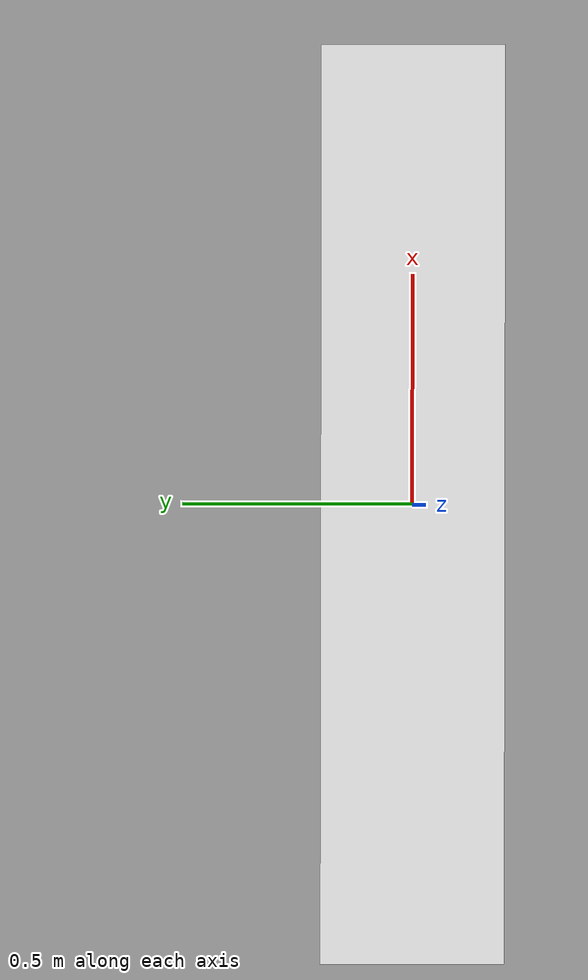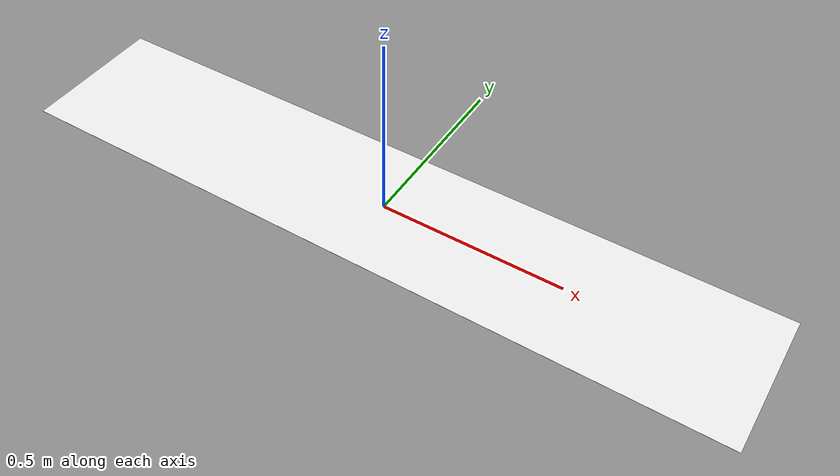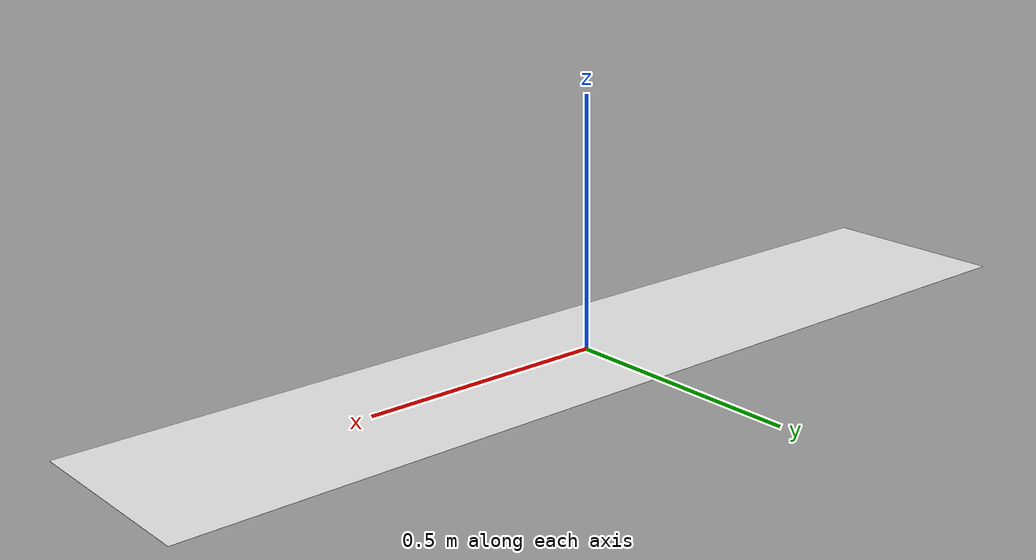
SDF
<?xml version="1.0"?>
<sdf version="1.6">
<model name="white line">
  <static>true</static>
    <link name="link_ground">
      <collision name="collision">
        <geometry>
          <plane>
            <normal>0 0 1</normal>
            <size>2 0.4</size>
          </plane>
        </geometry>

        <surface>
          <friction>
            <ode>
              <mu>100</mu>
              <mu2>50</mu2>
            </ode>
          </friction>
        </surface>
      </collision>
      <visual name="visual_ground">
        <cast_shadows>false</cast_shadows>
        <geometry>
          <plane>
            <normal>0 0 1</normal>
            <size>2 0.4</size>
          </plane>
        </geometry>
       <material>
          <script>
            <uri>file://media/materials/scripts/gazebo.material</uri>
            <name>Gazebo/White</name>
          </script>
        </material>
      </visual>
    </link>
  </model>
</sdf>
